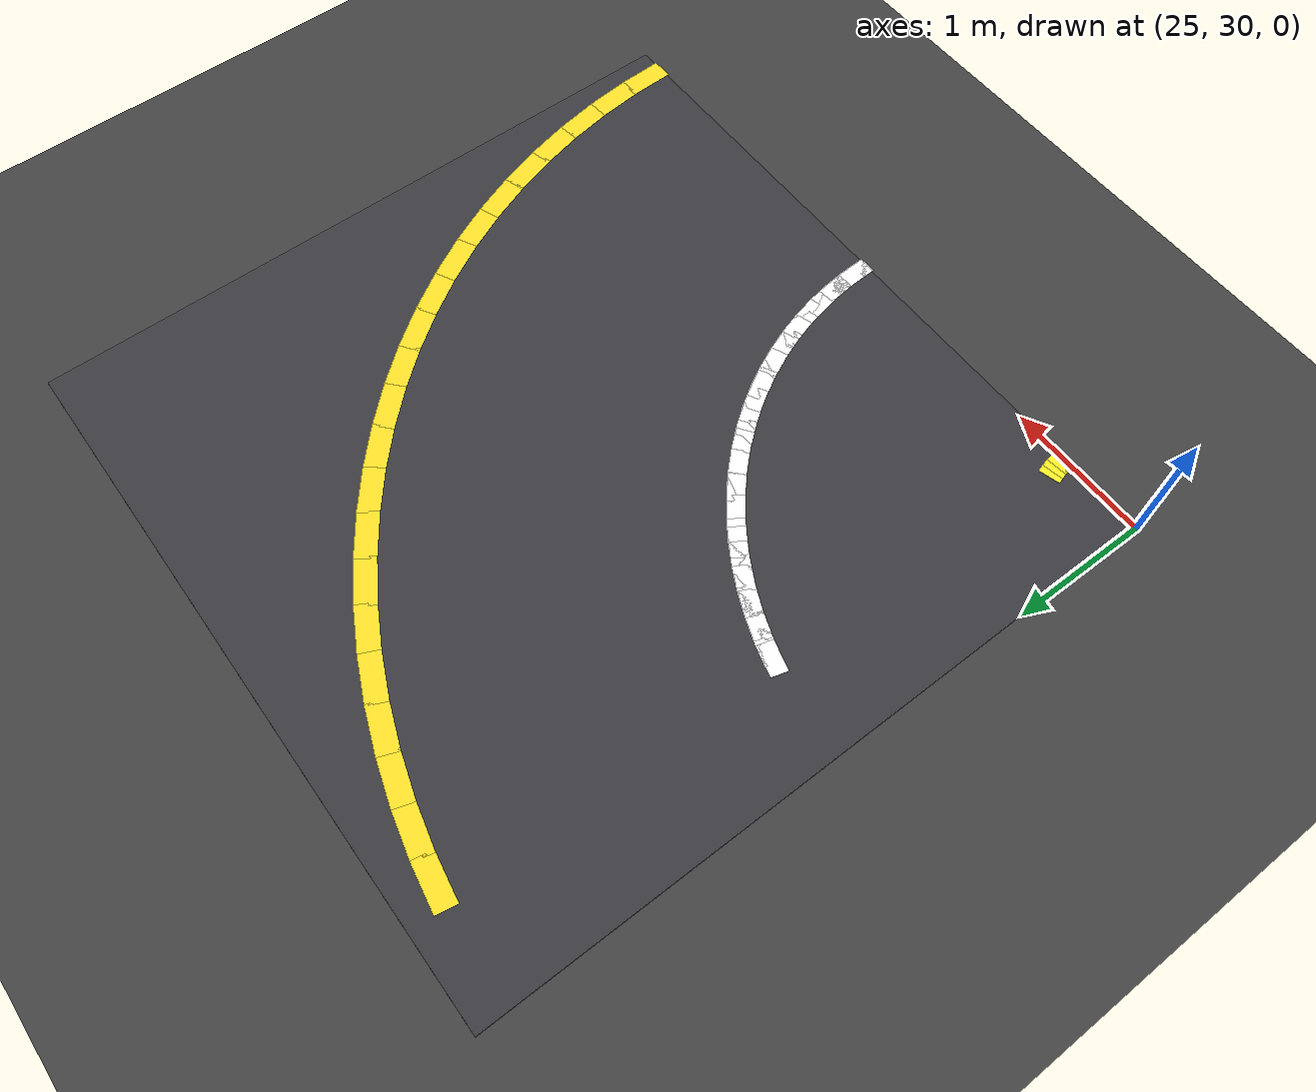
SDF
<sdf version="1.7">
 <world name="compact_city">
  <model name="ground_plane">
   <static>1</static>
   <pose>0 0 0.01 0 -0 0</pose>
   <link name="link">
    <collision name="collision">
     <geometry><plane><normal>0 0 1</normal><size>200 200</size></plane></geometry>
    </collision>
    <visual name="visual">
     <geometry><plane><normal>0 0 1</normal><size>200 200</size></plane></geometry>
     <material>
      <ambient>0.2 0.2 0.2 1</ambient>
      <diffuse>0.25 0.25 0.25 1</diffuse>
      <specular>0.1 0.1 0.1 1</specular>
     </material>
    </visual>
   </link>
  </model>
  <model name="road_tile_12">
   <static>1</static>
   <pose>27.5 32.5 0.015 0 -0 0</pose>
   <link name="link">
    <collision name="collision"><geometry><box><size>5 5 0.03</size></box></geometry></collision>
    <visual name="visual">
     <geometry><box><size>5 5 0.03</size></box></geometry>
     <material>
      <ambient>0.18 0.18 0.2 1</ambient>
      <diffuse>0.22 0.22 0.24 1</diffuse>
      <specular>0.1 0.1 0.1 1</specular>
     </material>
    </visual>
   </link>
  </model>
  <model name="ac_426">
   <static>1</static>
   <pose>27.4987 30.0818 0.038 0 -0 1.6035</pose>
   <link name="link">
    <visual name="v">
     <geometry><box><size>0.173411 0.12 0.002</size></box></geometry>
     <material><ambient>1 1 1 1</ambient><diffuse>0.95 0.95 0.95 1</diffuse></material>
    </visual>
   </link>
  </model>
  <model name="ac_427">
   <static>1</static>
   <pose>27.488 30.245 0.038 0 -0 1.669</pose>
   <link name="link">
    <visual name="v">
     <geometry><box><size>0.173411 0.12 0.002</size></box></geometry>
     <material><ambient>1 1 1 1</ambient><diffuse>0.95 0.95 0.95 1</diffuse></material>
    </visual>
   </link>
  </model>
  <model name="ac_428">
   <static>1</static>
   <pose>27.4666 30.4072 0.038 0 -0 1.7344</pose>
   <link name="link">
    <visual name="v">
     <geometry><box><size>0.173411 0.12 0.002</size></box></geometry>
     <material><ambient>1 1 1 1</ambient><diffuse>0.95 0.95 0.95 1</diffuse></material>
    </visual>
   </link>
  </model>
  <model name="ac_429">
   <static>1</static>
   <pose>27.4347 30.5677 0.038 0 -0 1.7999</pose>
   <link name="link">
    <visual name="v">
     <geometry><box><size>0.173411 0.12 0.002</size></box></geometry>
     <material><ambient>1 1 1 1</ambient><diffuse>0.95 0.95 0.95 1</diffuse></material>
    </visual>
   </link>
  </model>
  <model name="ac_430">
   <static>1</static>
   <pose>27.3924 30.7257 0.038 0 -0 1.8653</pose>
   <link name="link">
    <visual name="v">
     <geometry><box><size>0.173411 0.12 0.002</size></box></geometry>
     <material><ambient>1 1 1 1</ambient><diffuse>0.95 0.95 0.95 1</diffuse></material>
    </visual>
   </link>
  </model>
  <model name="ac_431">
   <static>1</static>
   <pose>27.3398 30.8806 0.038 0 -0 1.9308</pose>
   <link name="link">
    <visual name="v">
     <geometry><box><size>0.173411 0.12 0.002</size></box></geometry>
     <material><ambient>1 1 1 1</ambient><diffuse>0.95 0.95 0.95 1</diffuse></material>
    </visual>
   </link>
  </model>
  <model name="ac_432">
   <static>1</static>
   <pose>27.2772 31.0318 0.038 0 -0 1.9962</pose>
   <link name="link">
    <visual name="v">
     <geometry><box><size>0.173411 0.12 0.002</size></box></geometry>
     <material><ambient>1 1 1 1</ambient><diffuse>0.95 0.95 0.95 1</diffuse></material>
    </visual>
   </link>
  </model>
  <model name="ac_433">
   <static>1</static>
   <pose>27.2048 31.1785 0.038 0 -0 2.0617</pose>
   <link name="link">
    <visual name="v">
     <geometry><box><size>0.173411 0.12 0.002</size></box></geometry>
     <material><ambient>1 1 1 1</ambient><diffuse>0.95 0.95 0.95 1</diffuse></material>
    </visual>
   </link>
  </model>
  <model name="ac_434">
   <static>1</static>
   <pose>27.123 31.3202 0.038 0 -0 2.1271</pose>
   <link name="link">
    <visual name="v">
     <geometry><box><size>0.173411 0.12 0.002</size></box></geometry>
     <material><ambient>1 1 1 1</ambient><diffuse>0.95 0.95 0.95 1</diffuse></material>
    </visual>
   </link>
  </model>
  <model name="ac_435">
   <static>1</static>
   <pose>27.0321 31.4562 0.038 0 -0 2.1926</pose>
   <link name="link">
    <visual name="v">
     <geometry><box><size>0.173411 0.12 0.002</size></box></geometry>
     <material><ambient>1 1 1 1</ambient><diffuse>0.95 0.95 0.95 1</diffuse></material>
    </visual>
   </link>
  </model>
  <model name="ac_436">
   <static>1</static>
   <pose>26.9325 31.586 0.038 0 -0 2.258</pose>
   <link name="link">
    <visual name="v">
     <geometry><box><size>0.173411 0.12 0.002</size></box></geometry>
     <material><ambient>1 1 1 1</ambient><diffuse>0.95 0.95 0.95 1</diffuse></material>
    </visual>
   </link>
  </model>
  <model name="ac_437">
   <static>1</static>
   <pose>26.8247 31.709 0.038 0 -0 2.3235</pose>
   <link name="link">
    <visual name="v">
     <geometry><box><size>0.173411 0.12 0.002</size></box></geometry>
     <material><ambient>1 1 1 1</ambient><diffuse>0.95 0.95 0.95 1</diffuse></material>
    </visual>
   </link>
  </model>
  <model name="ac_438">
   <static>1</static>
   <pose>26.709 31.8247 0.038 0 -0 2.3889</pose>
   <link name="link">
    <visual name="v">
     <geometry><box><size>0.173411 0.12 0.002</size></box></geometry>
     <material><ambient>1 1 1 1</ambient><diffuse>0.95 0.95 0.95 1</diffuse></material>
    </visual>
   </link>
  </model>
  <model name="ac_439">
   <static>1</static>
   <pose>26.586 31.9325 0.038 0 -0 2.4544</pose>
   <link name="link">
    <visual name="v">
     <geometry><box><size>0.173411 0.12 0.002</size></box></geometry>
     <material><ambient>1 1 1 1</ambient><diffuse>0.95 0.95 0.95 1</diffuse></material>
    </visual>
   </link>
  </model>
  <model name="ac_440">
   <static>1</static>
   <pose>26.4562 32.0321 0.038 0 -0 2.5198</pose>
   <link name="link">
    <visual name="v">
     <geometry><box><size>0.173411 0.12 0.002</size></box></geometry>
     <material><ambient>1 1 1 1</ambient><diffuse>0.95 0.95 0.95 1</diffuse></material>
    </visual>
   </link>
  </model>
  <model name="ac_441">
   <static>1</static>
   <pose>26.3202 32.123 0.038 0 -0 2.5853</pose>
   <link name="link">
    <visual name="v">
     <geometry><box><size>0.173411 0.12 0.002</size></box></geometry>
     <material><ambient>1 1 1 1</ambient><diffuse>0.95 0.95 0.95 1</diffuse></material>
    </visual>
   </link>
  </model>
  <model name="ac_442">
   <static>1</static>
   <pose>26.1785 32.2048 0.038 0 -0 2.6507</pose>
   <link name="link">
    <visual name="v">
     <geometry><box><size>0.173411 0.12 0.002</size></box></geometry>
     <material><ambient>1 1 1 1</ambient><diffuse>0.95 0.95 0.95 1</diffuse></material>
    </visual>
   </link>
  </model>
  <model name="ac_443">
   <static>1</static>
   <pose>26.0318 32.2772 0.038 0 -0 2.7162</pose>
   <link name="link">
    <visual name="v">
     <geometry><box><size>0.173411 0.12 0.002</size></box></geometry>
     <material><ambient>1 1 1 1</ambient><diffuse>0.95 0.95 0.95 1</diffuse></material>
    </visual>
   </link>
  </model>
  <model name="ac_444">
   <static>1</static>
   <pose>25.8806 32.3398 0.038 0 -0 2.7816</pose>
   <link name="link">
    <visual name="v">
     <geometry><box><size>0.173411 0.12 0.002</size></box></geometry>
     <material><ambient>1 1 1 1</ambient><diffuse>0.95 0.95 0.95 1</diffuse></material>
    </visual>
   </link>
  </model>
  <model name="ac_445">
   <static>1</static>
   <pose>25.7257 32.3924 0.038 0 -0 2.8471</pose>
   <link name="link">
    <visual name="v">
     <geometry><box><size>0.173411 0.12 0.002</size></box></geometry>
     <material><ambient>1 1 1 1</ambient><diffuse>0.95 0.95 0.95 1</diffuse></material>
    </visual>
   </link>
  </model>
  <model name="ao_474">
   <static>1</static>
   <pose>29.7974 30.1571 0.038 0 -0 1.6035</pose>
   <link name="link">
    <visual name="v">
     <geometry><box><size>0.329808 0.15 0.002</size></box></geometry>
     <material><ambient>0.9 0.8 0.1 1</ambient><diffuse>0.95 0.85 0.15 1</diffuse></material>
    </visual>
   </link>
  </model>
  <model name="ao_475">
   <static>1</static>
   <pose>29.7769 30.4705 0.038 0 -0 1.669</pose>
   <link name="link">
    <visual name="v">
     <geometry><box><size>0.329808 0.15 0.002</size></box></geometry>
     <material><ambient>0.9 0.8 0.1 1</ambient><diffuse>0.95 0.85 0.15 1</diffuse></material>
    </visual>
   </link>
  </model>
  <model name="ao_476">
   <static>1</static>
   <pose>29.7359 30.7819 0.038 0 -0 1.7344</pose>
   <link name="link">
    <visual name="v">
     <geometry><box><size>0.329808 0.15 0.002</size></box></geometry>
     <material><ambient>0.9 0.8 0.1 1</ambient><diffuse>0.95 0.85 0.15 1</diffuse></material>
    </visual>
   </link>
  </model>
  <model name="ao_477">
   <static>1</static>
   <pose>29.6746 31.09 0.038 0 -0 1.7999</pose>
   <link name="link">
    <visual name="v">
     <geometry><box><size>0.329808 0.15 0.002</size></box></geometry>
     <material><ambient>0.9 0.8 0.1 1</ambient><diffuse>0.95 0.85 0.15 1</diffuse></material>
    </visual>
   </link>
  </model>
  <model name="ao_478">
   <static>1</static>
   <pose>29.5933 31.3934 0.038 0 -0 1.8653</pose>
   <link name="link">
    <visual name="v">
     <geometry><box><size>0.329808 0.15 0.002</size></box></geometry>
     <material><ambient>0.9 0.8 0.1 1</ambient><diffuse>0.95 0.85 0.15 1</diffuse></material>
    </visual>
   </link>
  </model>
  <model name="ao_479">
   <static>1</static>
   <pose>29.4923 31.6908 0.038 0 -0 1.9308</pose>
   <link name="link">
    <visual name="v">
     <geometry><box><size>0.329808 0.15 0.002</size></box></geometry>
     <material><ambient>0.9 0.8 0.1 1</ambient><diffuse>0.95 0.85 0.15 1</diffuse></material>
    </visual>
   </link>
  </model>
  <model name="ao_480">
   <static>1</static>
   <pose>29.3721 31.981 0.038 0 -0 1.9962</pose>
   <link name="link">
    <visual name="v">
     <geometry><box><size>0.329808 0.15 0.002</size></box></geometry>
     <material><ambient>0.9 0.8 0.1 1</ambient><diffuse>0.95 0.85 0.15 1</diffuse></material>
    </visual>
   </link>
  </model>
  <model name="ao_481">
   <static>1</static>
   <pose>29.2332 32.2627 0.038 0 -0 2.0617</pose>
   <link name="link">
    <visual name="v">
     <geometry><box><size>0.329808 0.15 0.002</size></box></geometry>
     <material><ambient>0.9 0.8 0.1 1</ambient><diffuse>0.95 0.85 0.15 1</diffuse></material>
    </visual>
   </link>
  </model>
  <model name="ao_482">
   <static>1</static>
   <pose>29.0762 32.5347 0.038 0 -0 2.1271</pose>
   <link name="link">
    <visual name="v">
     <geometry><box><size>0.329808 0.15 0.002</size></box></geometry>
     <material><ambient>0.9 0.8 0.1 1</ambient><diffuse>0.95 0.85 0.15 1</diffuse></material>
    </visual>
   </link>
  </model>
  <model name="ao_483">
   <static>1</static>
   <pose>28.9017 32.7959 0.038 0 -0 2.1926</pose>
   <link name="link">
    <visual name="v">
     <geometry><box><size>0.329808 0.15 0.002</size></box></geometry>
     <material><ambient>0.9 0.8 0.1 1</ambient><diffuse>0.95 0.85 0.15 1</diffuse></material>
    </visual>
   </link>
  </model>
  <model name="ao_484">
   <static>1</static>
   <pose>28.7105 33.0451 0.038 0 -0 2.258</pose>
   <link name="link">
    <visual name="v">
     <geometry><box><size>0.329808 0.15 0.002</size></box></geometry>
     <material><ambient>0.9 0.8 0.1 1</ambient><diffuse>0.95 0.85 0.15 1</diffuse></material>
    </visual>
   </link>
  </model>
  <model name="ao_485">
   <static>1</static>
   <pose>28.5033 33.2812 0.038 0 -0 2.3235</pose>
   <link name="link">
    <visual name="v">
     <geometry><box><size>0.329808 0.15 0.002</size></box></geometry>
     <material><ambient>0.9 0.8 0.1 1</ambient><diffuse>0.95 0.85 0.15 1</diffuse></material>
    </visual>
   </link>
  </model>
  <model name="ao_486">
   <static>1</static>
   <pose>28.2812 33.5033 0.038 0 -0 2.3889</pose>
   <link name="link">
    <visual name="v">
     <geometry><box><size>0.329808 0.15 0.002</size></box></geometry>
     <material><ambient>0.9 0.8 0.1 1</ambient><diffuse>0.95 0.85 0.15 1</diffuse></material>
    </visual>
   </link>
  </model>
  <model name="ao_487">
   <static>1</static>
   <pose>28.0451 33.7105 0.038 0 -0 2.4544</pose>
   <link name="link">
    <visual name="v">
     <geometry><box><size>0.329808 0.15 0.002</size></box></geometry>
     <material><ambient>0.9 0.8 0.1 1</ambient><diffuse>0.95 0.85 0.15 1</diffuse></material>
    </visual>
   </link>
  </model>
  <model name="ao_488">
   <static>1</static>
   <pose>27.7959 33.9017 0.038 0 -0 2.5198</pose>
   <link name="link">
    <visual name="v">
     <geometry><box><size>0.329808 0.15 0.002</size></box></geometry>
     <material><ambient>0.9 0.8 0.1 1</ambient><diffuse>0.95 0.85 0.15 1</diffuse></material>
    </visual>
   </link>
  </model>
  <model name="ao_489">
   <static>1</static>
   <pose>27.5347 34.0762 0.038 0 -0 2.5853</pose>
   <link name="link">
    <visual name="v">
     <geometry><box><size>0.329808 0.15 0.002</size></box></geometry>
     <material><ambient>0.9 0.8 0.1 1</ambient><diffuse>0.95 0.85 0.15 1</diffuse></material>
    </visual>
   </link>
  </model>
  <model name="ao_490">
   <static>1</static>
   <pose>27.2627 34.2332 0.038 0 -0 2.6507</pose>
   <link name="link">
    <visual name="v">
     <geometry><box><size>0.329808 0.15 0.002</size></box></geometry>
     <material><ambient>0.9 0.8 0.1 1</ambient><diffuse>0.95 0.85 0.15 1</diffuse></material>
    </visual>
   </link>
  </model>
  <model name="ao_491">
   <static>1</static>
   <pose>26.981 34.3721 0.038 0 -0 2.7162</pose>
   <link name="link">
    <visual name="v">
     <geometry><box><size>0.329808 0.15 0.002</size></box></geometry>
     <material><ambient>0.9 0.8 0.1 1</ambient><diffuse>0.95 0.85 0.15 1</diffuse></material>
    </visual>
   </link>
  </model>
  <model name="ao_492">
   <static>1</static>
   <pose>26.6908 34.4923 0.038 0 -0 2.7816</pose>
   <link name="link">
    <visual name="v">
     <geometry><box><size>0.329808 0.15 0.002</size></box></geometry>
     <material><ambient>0.9 0.8 0.1 1</ambient><diffuse>0.95 0.85 0.15 1</diffuse></material>
    </visual>
   </link>
  </model>
  <model name="ao_493">
   <static>1</static>
   <pose>26.3934 34.5933 0.038 0 -0 2.8471</pose>
   <link name="link">
    <visual name="v">
     <geometry><box><size>0.329808 0.15 0.002</size></box></geometry>
     <material><ambient>0.9 0.8 0.1 1</ambient><diffuse>0.95 0.85 0.15 1</diffuse></material>
    </visual>
   </link>
  </model>
  <model name="ao_494">
   <static>1</static>
   <pose>26.09 34.6746 0.038 0 -0 2.9125</pose>
   <link name="link">
    <visual name="v">
     <geometry><box><size>0.329808 0.15 0.002</size></box></geometry>
     <material><ambient>0.9 0.8 0.1 1</ambient><diffuse>0.95 0.85 0.15 1</diffuse></material>
    </visual>
   </link>
  </model>
  <model name="ao_495">
   <static>1</static>
   <pose>25.7819 34.7359 0.038 0 -0 2.978</pose>
   <link name="link">
    <visual name="v">
     <geometry><box><size>0.329808 0.15 0.002</size></box></geometry>
     <material><ambient>0.9 0.8 0.1 1</ambient><diffuse>0.95 0.85 0.15 1</diffuse></material>
    </visual>
   </link>
  </model>
  <model name="arc_c_261">
   <static>1</static>
   <pose>27.4961 30.0981 0.038 0 -0 1.6101</pose>
   <link name="link">
    <visual name="visual">
     <geometry><box><size>0.216299 0.12 0.002</size></box></geometry>
     <material><ambient>1 1 1 1</ambient><diffuse>0.95 0.95 0.95 1</diffuse></material>
    </visual>
   </link>
  </model>
  <model name="arc_c_262">
   <static>1</static>
   <pose>27.4808 30.2936 0.038 0 -0 1.6886</pose>
   <link name="link">
    <visual name="visual">
     <geometry><box><size>0.216299 0.12 0.002</size></box></geometry>
     <material><ambient>1 1 1 1</ambient><diffuse>0.95 0.95 0.95 1</diffuse></material>
    </visual>
   </link>
  </model>
  <model name="arc_c_263">
   <static>1</static>
   <pose>27.4501 30.4873 0.038 0 -0 1.7671</pose>
   <link name="link">
    <visual name="visual">
     <geometry><box><size>0.216299 0.12 0.002</size></box></geometry>
     <material><ambient>1 1 1 1</ambient><diffuse>0.95 0.95 0.95 1</diffuse></material>
    </visual>
   </link>
  </model>
  <model name="arc_c_264">
   <static>1</static>
   <pose>27.4043 30.6781 0.038 0 -0 1.8457</pose>
   <link name="link">
    <visual name="visual">
     <geometry><box><size>0.216299 0.12 0.002</size></box></geometry>
     <material><ambient>1 1 1 1</ambient><diffuse>0.95 0.95 0.95 1</diffuse></material>
    </visual>
   </link>
  </model>
  <model name="arc_c_265">
   <static>1</static>
   <pose>27.3437 30.8646 0.038 0 -0 1.9242</pose>
   <link name="link">
    <visual name="visual">
     <geometry><box><size>0.216299 0.12 0.002</size></box></geometry>
     <material><ambient>1 1 1 1</ambient><diffuse>0.95 0.95 0.95 1</diffuse></material>
    </visual>
   </link>
  </model>
  <model name="arc_c_266">
   <static>1</static>
   <pose>27.2686 31.0458 0.038 0 -0 2.0028</pose>
   <link name="link">
    <visual name="visual">
     <geometry><box><size>0.216299 0.12 0.002</size></box></geometry>
     <material><ambient>1 1 1 1</ambient><diffuse>0.95 0.95 0.95 1</diffuse></material>
    </visual>
   </link>
  </model>
  <model name="arc_c_267">
   <static>1</static>
   <pose>27.1796 31.2206 0.038 0 -0 2.0813</pose>
   <link name="link">
    <visual name="visual">
     <geometry><box><size>0.216299 0.12 0.002</size></box></geometry>
     <material><ambient>1 1 1 1</ambient><diffuse>0.95 0.95 0.95 1</diffuse></material>
    </visual>
   </link>
  </model>
  <model name="arc_c_268">
   <static>1</static>
   <pose>27.0771 31.3879 0.038 0 -0 2.1598</pose>
   <link name="link">
    <visual name="visual">
     <geometry><box><size>0.216299 0.12 0.002</size></box></geometry>
     <material><ambient>1 1 1 1</ambient><diffuse>0.95 0.95 0.95 1</diffuse></material>
    </visual>
   </link>
  </model>
  <model name="arc_c_269">
   <static>1</static>
   <pose>26.9618 31.5465 0.038 0 -0 2.2384</pose>
   <link name="link">
    <visual name="visual">
     <geometry><box><size>0.216299 0.12 0.002</size></box></geometry>
     <material><ambient>1 1 1 1</ambient><diffuse>0.95 0.95 0.95 1</diffuse></material>
    </visual>
   </link>
  </model>
  <model name="arc_c_270">
   <static>1</static>
   <pose>26.8344 31.6957 0.038 0 -0 2.3169</pose>
   <link name="link">
    <visual name="visual">
     <geometry><box><size>0.216299 0.12 0.002</size></box></geometry>
     <material><ambient>1 1 1 1</ambient><diffuse>0.95 0.95 0.95 1</diffuse></material>
    </visual>
   </link>
  </model>
  <model name="arc_c_271">
   <static>1</static>
   <pose>26.6957 31.8344 0.038 0 -0 2.3955</pose>
   <link name="link">
    <visual name="visual">
     <geometry><box><size>0.216299 0.12 0.002</size></box></geometry>
     <material><ambient>1 1 1 1</ambient><diffuse>0.95 0.95 0.95 1</diffuse></material>
    </visual>
   </link>
  </model>
  <model name="arc_c_272">
   <static>1</static>
   <pose>26.5465 31.9618 0.038 0 -0 2.474</pose>
   <link name="link">
    <visual name="visual">
     <geometry><box><size>0.216299 0.12 0.002</size></box></geometry>
     <material><ambient>1 1 1 1</ambient><diffuse>0.95 0.95 0.95 1</diffuse></material>
    </visual>
   </link>
  </model>
  <model name="arc_c_273">
   <static>1</static>
   <pose>26.3879 32.0771 0.038 0 -0 2.5525</pose>
   <link name="link">
    <visual name="visual">
     <geometry><box><size>0.216299 0.12 0.002</size></box></geometry>
     <material><ambient>1 1 1 1</ambient><diffuse>0.95 0.95 0.95 1</diffuse></material>
    </visual>
   </link>
  </model>
  <model name="arc_c_274">
   <static>1</static>
   <pose>26.2206 32.1796 0.038 0 -0 2.6311</pose>
   <link name="link">
    <visual name="visual">
     <geometry><box><size>0.216299 0.12 0.002</size></box></geometry>
     <material><ambient>1 1 1 1</ambient><diffuse>0.95 0.95 0.95 1</diffuse></material>
    </visual>
   </link>
  </model>
  <model name="arc_c_275">
   <static>1</static>
   <pose>26.0458 32.2686 0.038 0 -0 2.7096</pose>
   <link name="link">
    <visual name="visual">
     <geometry><box><size>0.216299 0.12 0.002</size></box></geometry>
     <material><ambient>1 1 1 1</ambient><diffuse>0.95 0.95 0.95 1</diffuse></material>
    </visual>
   </link>
  </model>
  <model name="arc_c_276">
   <static>1</static>
   <pose>25.8646 32.3437 0.038 0 -0 2.7882</pose>
   <link name="link">
    <visual name="visual">
     <geometry><box><size>0.216299 0.12 0.002</size></box></geometry>
     <material><ambient>1 1 1 1</ambient><diffuse>0.95 0.95 0.95 1</diffuse></material>
    </visual>
   </link>
  </model>
  <model name="arc_c_277">
   <static>1</static>
   <pose>25.6781 32.4043 0.038 0 -0 2.8667</pose>
   <link name="link">
    <visual name="visual">
     <geometry><box><size>0.216299 0.12 0.002</size></box></geometry>
     <material><ambient>1 1 1 1</ambient><diffuse>0.95 0.95 0.95 1</diffuse></material>
    </visual>
   </link>
  </model>
  <model name="arc_in_282">
   <static>1</static>
   <pose>25.5954 30.0705 0.038 0 -0 1.6886</pose>
   <link name="link">
    <visual name="visual">
     <geometry><box><size>0.067112 0.15 0.002</size></box></geometry>
     <material><ambient>0.95 0.85 0.1 1</ambient><diffuse>1 0.9 0.15 1</diffuse></material>
    </visual>
   </link>
  </model>
  <model name="arc_in_283">
   <static>1</static>
   <pose>25.588 30.117 0.038 0 -0 1.7671</pose>
   <link name="link">
    <visual name="visual">
     <geometry><box><size>0.067112 0.15 0.002</size></box></geometry>
     <material><ambient>0.95 0.85 0.1 1</ambient><diffuse>1 0.9 0.15 1</diffuse></material>
    </visual>
   </link>
  </model>
  <model name="arc_in_284">
   <static>1</static>
   <pose>25.577 30.1627 0.038 0 -0 1.8457</pose>
   <link name="link">
    <visual name="visual">
     <geometry><box><size>0.067112 0.15 0.002</size></box></geometry>
     <material><ambient>0.95 0.85 0.1 1</ambient><diffuse>1 0.9 0.15 1</diffuse></material>
    </visual>
   </link>
  </model>
 </world>
</sdf>
